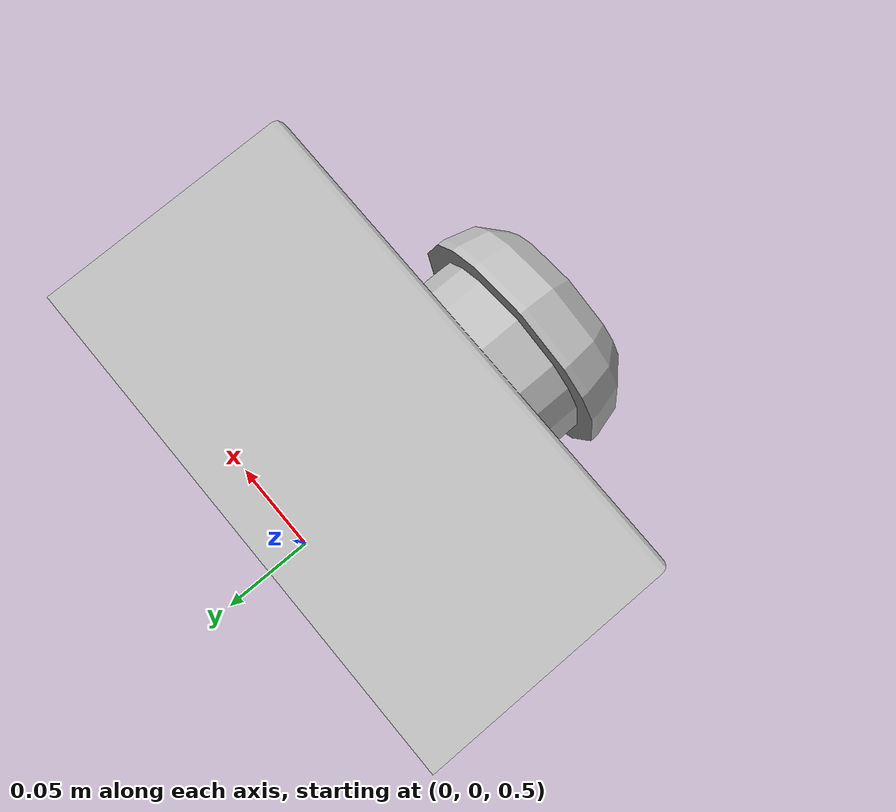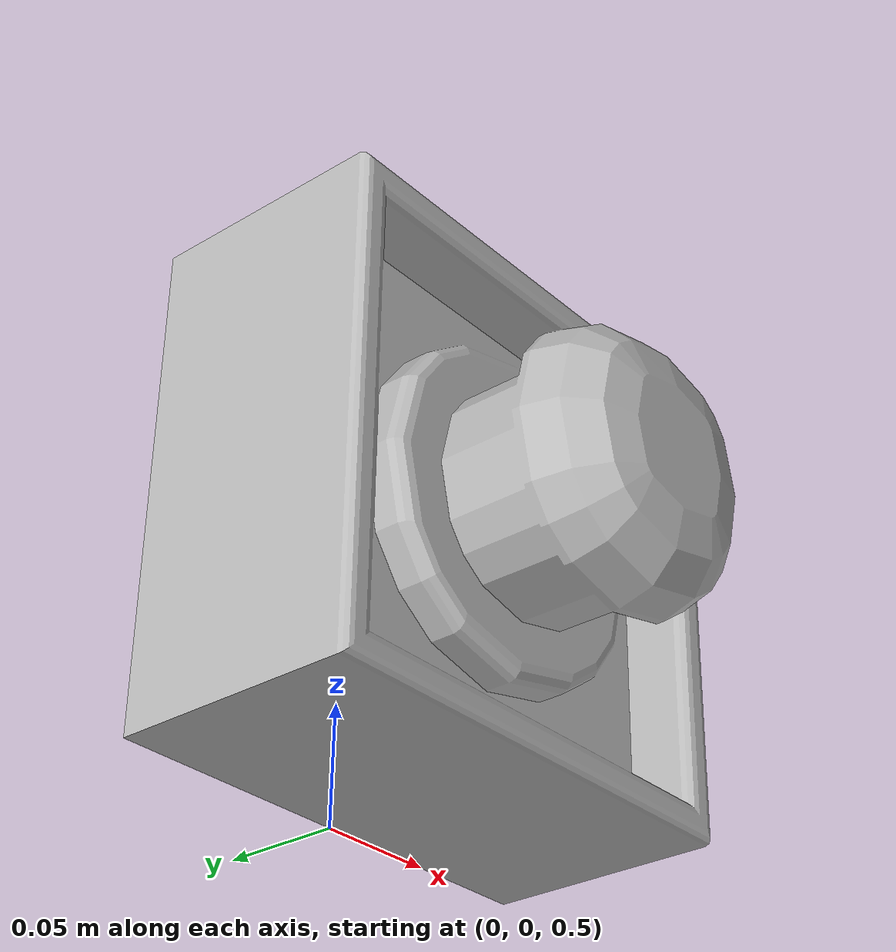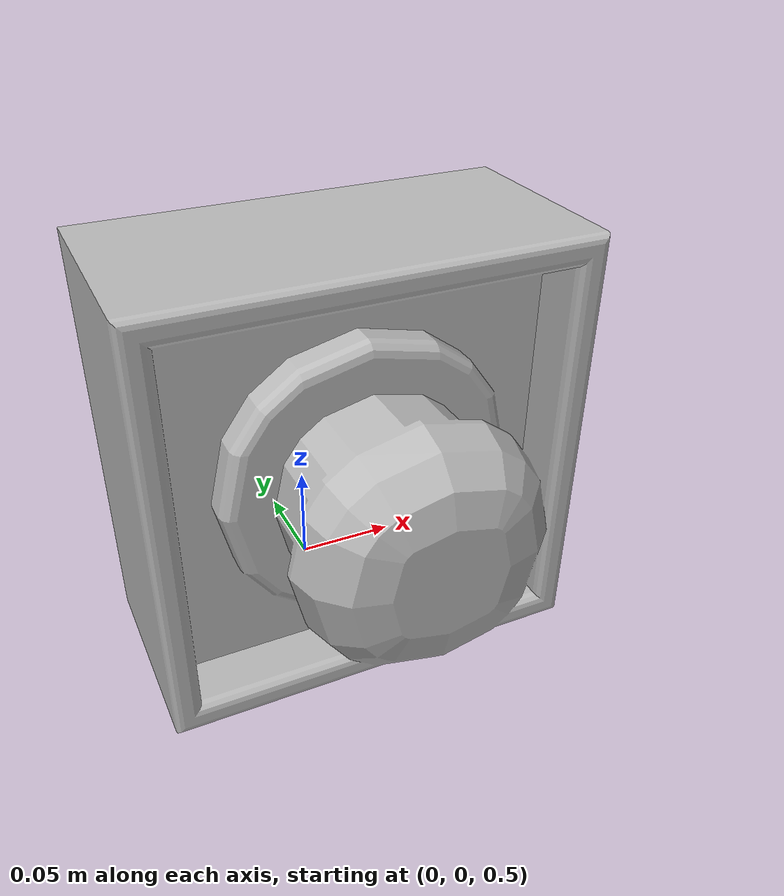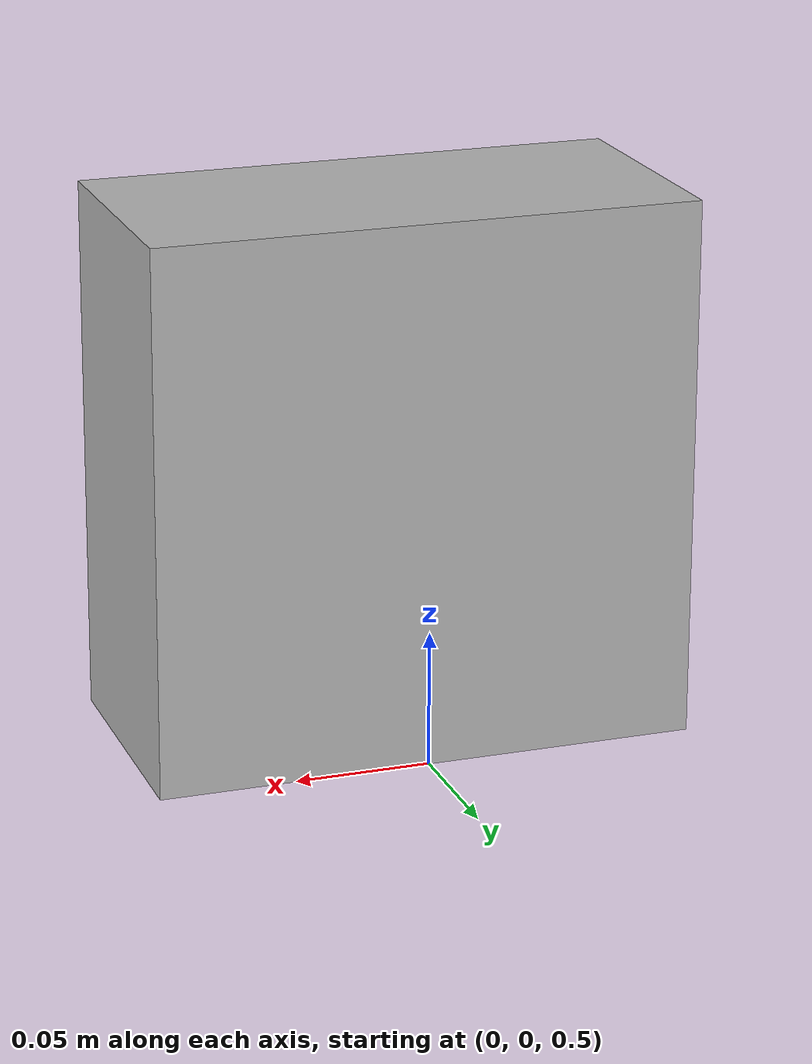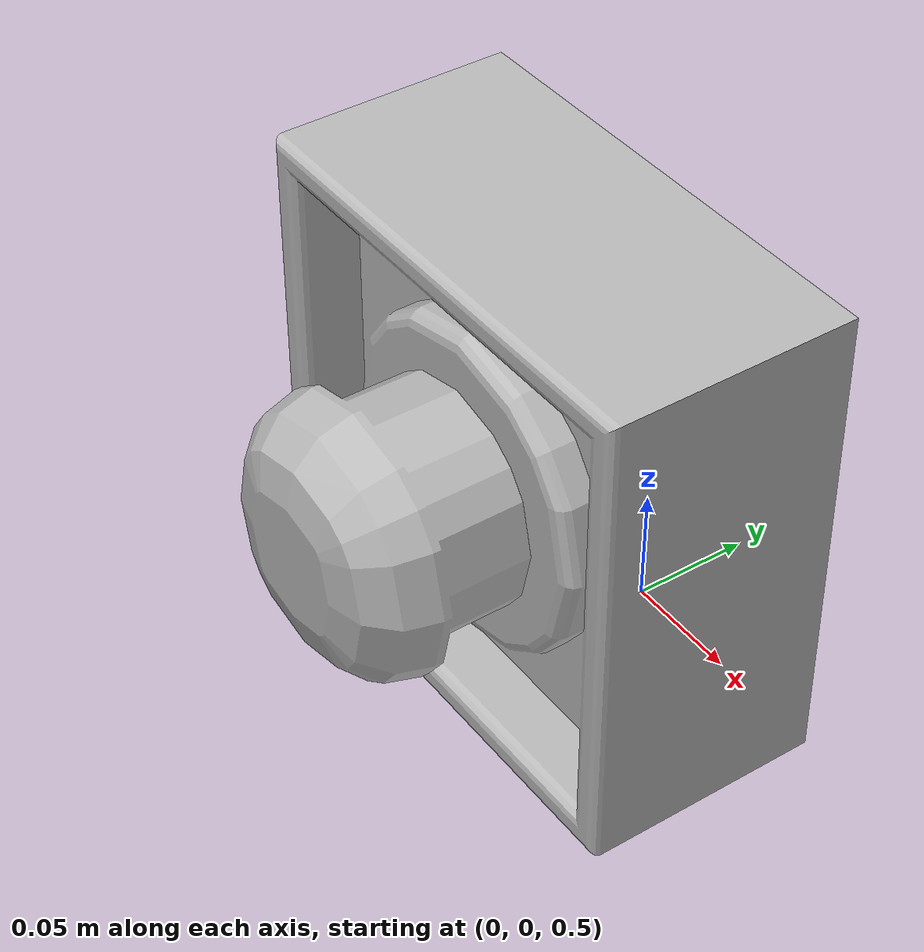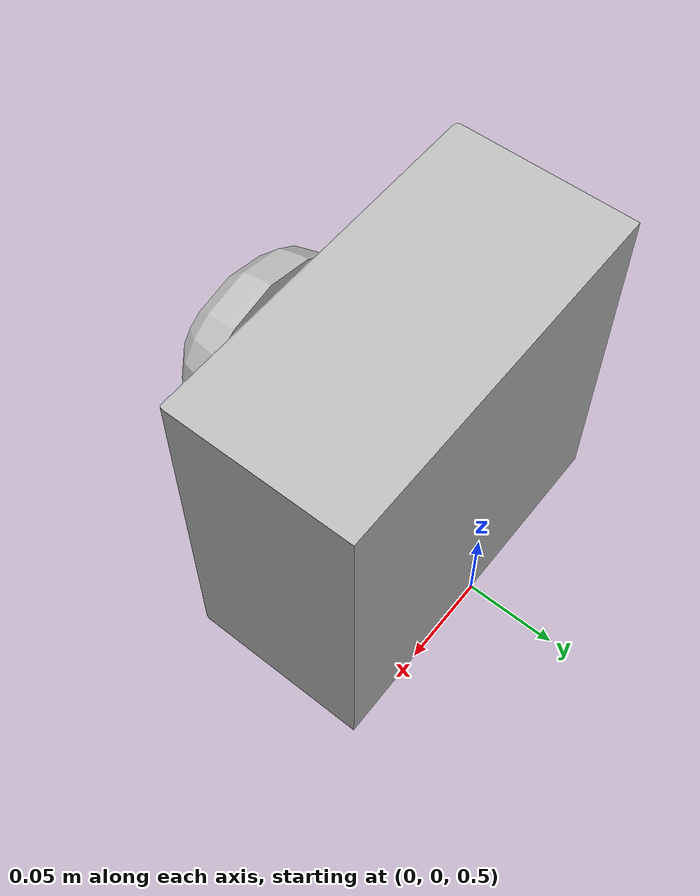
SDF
<?xml version="1.0" ?>
<sdf version="1.5">
  <model name="Stop Button">
	<pose>0 0 0.5 0 0 0</pose>
	<static>true</static>
    <link name="link">
      <collision name="collision">
        <geometry>
          <mesh>
            <uri>model://stop_button/meshes/stop_button.dae</uri>
			<scale>0.1 0.1 0.1</scale>
          </mesh>
        </geometry>
      </collision>

      <visual name="visual">
        <geometry>
          <mesh>
            <uri>model://stop_button/meshes/stop_button.dae</uri>
          	<scale>0.1 0.1 0.1</scale>
          </mesh>
        </geometry>
      </visual>
    </link>
  </model>
</sdf>
